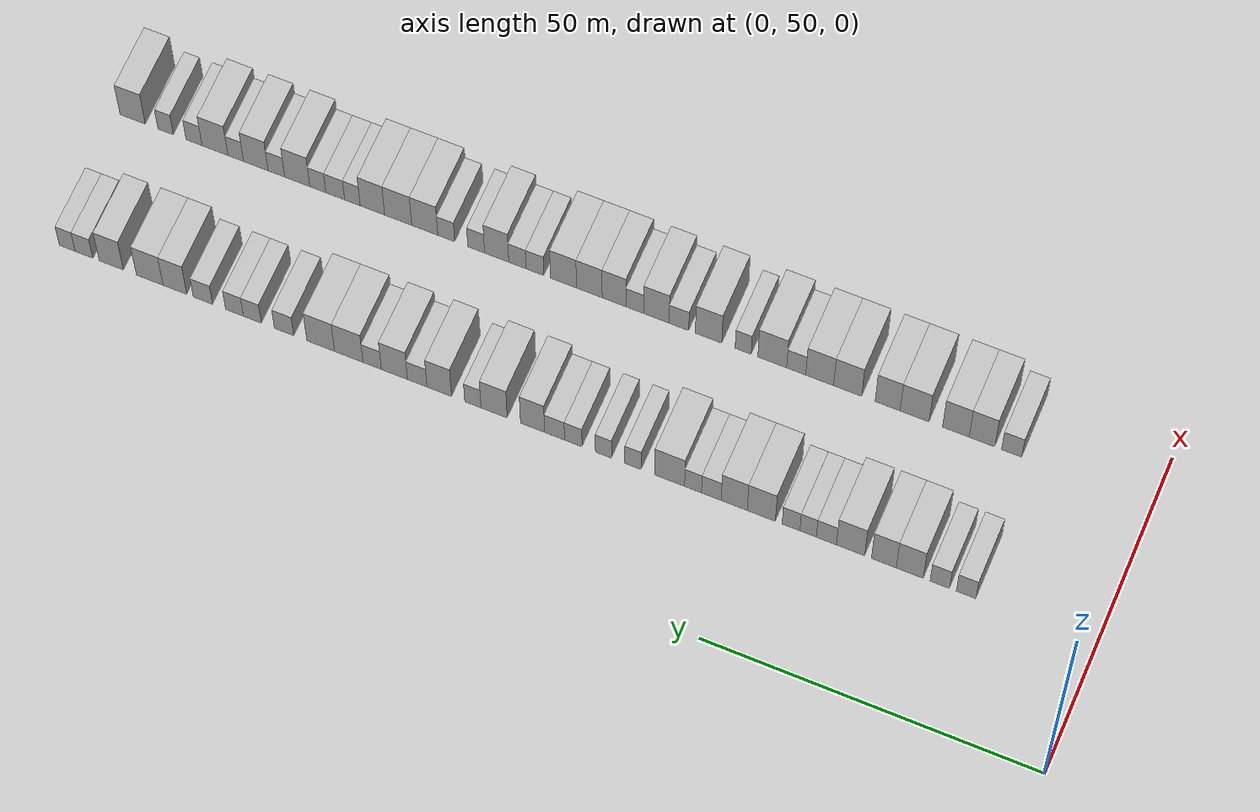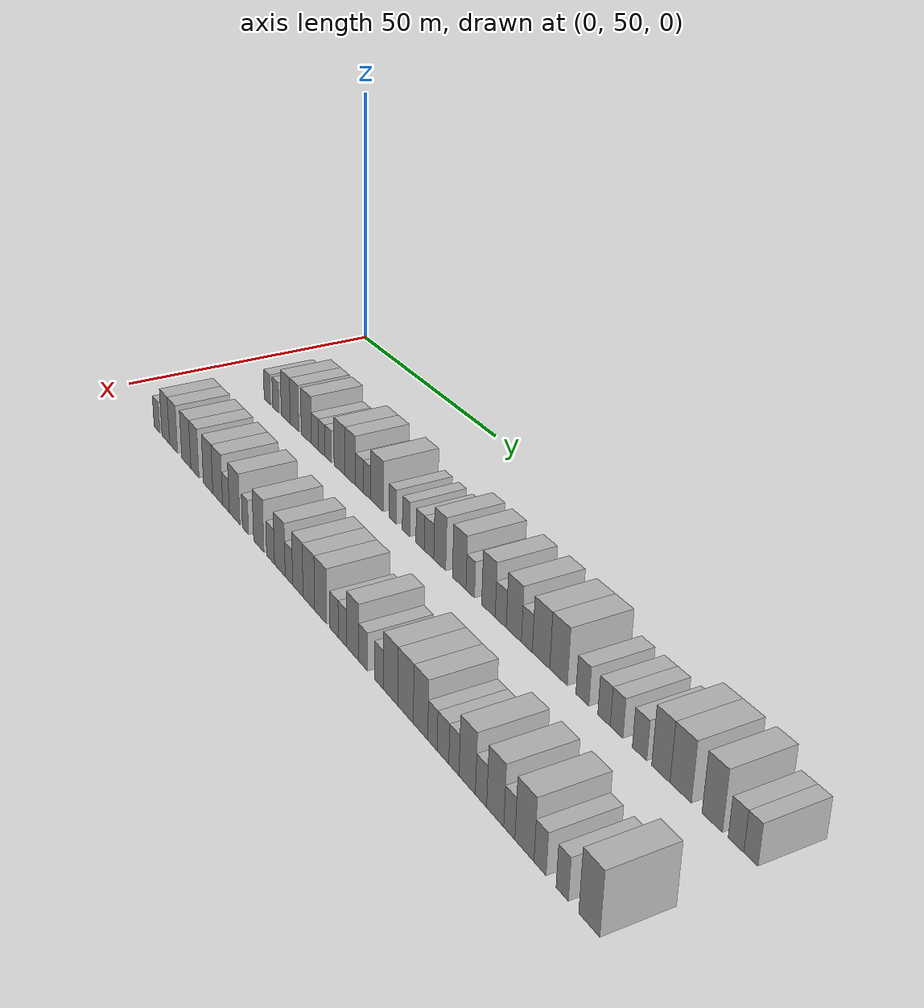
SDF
<sdf version="1.6">
 <world name="default">
  <model name="building_70">
   <static>1</static>
   <pose>25.0000 69.0316 0 0.000000 0.000000 0.000000</pose>
   <link name="link">
    <pose>0 0 3.00 0 0 0</pose>
    <collision name="collision"><geometry><box><size>10.0000 2.8460 6.0000</size></box></geometry></collision>
    <visual name="visual">
     <cast_shadows>0</cast_shadows>
     <geometry><box><size>10.0000 2.8460 6.0000</size></box></geometry>
     <material>
      <script>
       <uri>model://HANNAS_wall/materials/scripts</uri>
       <uri>model://HANNAS_wall/materials/textures</uri>
       <name>vrc/HANNAS_wall</name>
      </script>
     </material>
    </visual>
   </link>
  </model>
  <model name="building_71">
   <static>1</static>
   <pose>25.0000 72.8729 0 0.000000 0.000000 0.000000</pose>
   <link name="link">
    <pose>0 0 3.00 0 0 0</pose>
    <collision name="collision"><geometry><box><size>10.0000 2.8367 6.0000</size></box></geometry></collision>
    <visual name="visual">
     <cast_shadows>0</cast_shadows>
     <geometry><box><size>10.0000 2.8367 6.0000</size></box></geometry>
     <material>
      <script>
       <uri>model://HANNAS_wall/materials/scripts</uri>
       <uri>model://HANNAS_wall/materials/textures</uri>
       <name>vrc/HANNAS_wall</name>
      </script>
     </material>
    </visual>
   </link>
  </model>
  <model name="building_72">
   <static>1</static>
   <pose>25.0000 77.2694 0 0.000000 0.000000 0.000000</pose>
   <link name="link">
    <pose>0 0 4.50 0 0 0</pose>
    <collision name="collision"><geometry><box><size>10.0000 3.9564 9.0000</size></box></geometry></collision>
    <visual name="visual">
     <cast_shadows>0</cast_shadows>
     <geometry><box><size>10.0000 3.9564 9.0000</size></box></geometry>
     <material>
      <script>
       <uri>model://HANNAS_wall/materials/scripts</uri>
       <uri>model://HANNAS_wall/materials/textures</uri>
       <name>vrc/HANNAS_wall</name>
      </script>
     </material>
    </visual>
   </link>
  </model>
  <model name="building_73">
   <static>1</static>
   <pose>25.0000 81.0634 0 0.000000 0.000000 0.000000</pose>
   <link name="link">
    <pose>0 0 4.50 0 0 0</pose>
    <collision name="collision"><geometry><box><size>10.0000 3.6316 9.0000</size></box></geometry></collision>
    <visual name="visual">
     <cast_shadows>0</cast_shadows>
     <geometry><box><size>10.0000 3.6316 9.0000</size></box></geometry>
     <material>
      <script>
       <uri>model://HANNAS_wall/materials/scripts</uri>
       <uri>model://HANNAS_wall/materials/textures</uri>
       <name>vrc/HANNAS_wall</name>
      </script>
     </material>
    </visual>
   </link>
  </model>
  <model name="building_74">
   <static>1</static>
   <pose>25.0000 85.9550 0 0.000000 0.000000 0.000000</pose>
   <link name="link">
    <pose>0 0 4.50 0 0 0</pose>
    <collision name="collision"><geometry><box><size>10.0000 4.1516 9.0000</size></box></geometry></collision>
    <visual name="visual">
     <cast_shadows>0</cast_shadows>
     <geometry><box><size>10.0000 4.1516 9.0000</size></box></geometry>
     <material>
      <script>
       <uri>model://HANNAS_wall/materials/scripts</uri>
       <uri>model://HANNAS_wall/materials/textures</uri>
       <name>vrc/HANNAS_wall</name>
      </script>
     </material>
    </visual>
   </link>
  </model>
  <model name="building_75">
   <static>1</static>
   <pose>25.0000 89.5149 0 0.000000 0.000000 0.000000</pose>
   <link name="link">
    <pose>0 0 3.00 0 0 0</pose>
    <collision name="collision"><geometry><box><size>10.0000 2.9682 6.0000</size></box></geometry></collision>
    <visual name="visual">
     <cast_shadows>0</cast_shadows>
     <geometry><box><size>10.0000 2.9682 6.0000</size></box></geometry>
     <material>
      <script>
       <uri>model://HANNAS_wall/materials/scripts</uri>
       <uri>model://HANNAS_wall/materials/textures</uri>
       <name>vrc/HANNAS_wall</name>
      </script>
     </material>
    </visual>
   </link>
  </model>
  <model name="building_76">
   <static>1</static>
   <pose>25.0000 92.2148 0 0.000000 0.000000 0.000000</pose>
   <link name="link">
    <pose>0 0 3.00 0 0 0</pose>
    <collision name="collision"><geometry><box><size>10.0000 2.4316 6.0000</size></box></geometry></collision>
    <visual name="visual">
     <cast_shadows>0</cast_shadows>
     <geometry><box><size>10.0000 2.4316 6.0000</size></box></geometry>
     <material>
      <script>
       <uri>model://HANNAS_wall/materials/scripts</uri>
       <uri>model://HANNAS_wall/materials/textures</uri>
       <name>vrc/HANNAS_wall</name>
      </script>
     </material>
    </visual>
   </link>
  </model>
  <model name="building_77">
   <static>1</static>
   <pose>25.0000 94.7397 0 0.000000 0.000000 0.000000</pose>
   <link name="link">
    <pose>0 0 3.00 0 0 0</pose>
    <collision name="collision"><geometry><box><size>10.0000 2.6181 6.0000</size></box></geometry></collision>
    <visual name="visual">
     <cast_shadows>0</cast_shadows>
     <geometry><box><size>10.0000 2.6181 6.0000</size></box></geometry>
     <material>
      <script>
       <uri>model://HANNAS_wall/materials/scripts</uri>
       <uri>model://HANNAS_wall/materials/textures</uri>
       <name>vrc/HANNAS_wall</name>
      </script>
     </material>
    </visual>
   </link>
  </model>
  <model name="building_78">
   <static>1</static>
   <pose>25.0000 99.1302 0 0.000000 0.000000 0.000000</pose>
   <link name="link">
    <pose>0 0 4.50 0 0 0</pose>
    <collision name="collision"><geometry><box><size>10.0000 4.1629 9.0000</size></box></geometry></collision>
    <visual name="visual">
     <cast_shadows>0</cast_shadows>
     <geometry><box><size>10.0000 4.1629 9.0000</size></box></geometry>
     <material>
      <script>
       <uri>model://HANNAS_wall/materials/scripts</uri>
       <uri>model://HANNAS_wall/materials/textures</uri>
       <name>vrc/HANNAS_wall</name>
      </script>
     </material>
    </visual>
   </link>
  </model>
  <model name="building_79">
   <static>1</static>
   <pose>25.0000 103.1425 0 0.000000 0.000000 0.000000</pose>
   <link name="link">
    <pose>0 0 4.50 0 0 0</pose>
    <collision name="collision"><geometry><box><size>10.0000 3.8617 9.0000</size></box></geometry></collision>
    <visual name="visual">
     <cast_shadows>0</cast_shadows>
     <geometry><box><size>10.0000 3.8617 9.0000</size></box></geometry>
     <material>
      <script>
       <uri>model://HANNAS_wall/materials/scripts</uri>
       <uri>model://HANNAS_wall/materials/textures</uri>
       <name>vrc/HANNAS_wall</name>
      </script>
     </material>
    </visual>
   </link>
  </model>
  <model name="building_80">
   <static>1</static>
   <pose>25.0000 106.5391 0 0.000000 0.000000 0.000000</pose>
   <link name="link">
    <pose>0 0 3.00 0 0 0</pose>
    <collision name="collision"><geometry><box><size>10.0000 2.9316 6.0000</size></box></geometry></collision>
    <visual name="visual">
     <cast_shadows>0</cast_shadows>
     <geometry><box><size>10.0000 2.9316 6.0000</size></box></geometry>
     <material>
      <script>
       <uri>model://HANNAS_wall/materials/scripts</uri>
       <uri>model://HANNAS_wall/materials/textures</uri>
       <name>vrc/HANNAS_wall</name>
      </script>
     </material>
    </visual>
   </link>
  </model>
  <model name="building_81">
   <static>1</static>
   <pose>25.0000 109.2578 0 0.000000 0.000000 0.000000</pose>
   <link name="link">
    <pose>0 0 3.00 0 0 0</pose>
    <collision name="collision"><geometry><box><size>10.0000 2.5059 6.0000</size></box></geometry></collision>
    <visual name="visual">
     <cast_shadows>0</cast_shadows>
     <geometry><box><size>10.0000 2.5059 6.0000</size></box></geometry>
     <material>
      <script>
       <uri>model://HANNAS_wall/materials/scripts</uri>
       <uri>model://HANNAS_wall/materials/textures</uri>
       <name>vrc/HANNAS_wall</name>
      </script>
     </material>
    </visual>
   </link>
  </model>
  <model name="building_82">
   <static>1</static>
   <pose>25.0000 112.7416 0 0.000000 0.000000 0.000000</pose>
   <link name="link">
    <pose>0 0 4.50 0 0 0</pose>
    <collision name="collision"><geometry><box><size>10.0000 4.4617 9.0000</size></box></geometry></collision>
    <visual name="visual">
     <cast_shadows>0</cast_shadows>
     <geometry><box><size>10.0000 4.4617 9.0000</size></box></geometry>
     <material>
      <script>
       <uri>model://HANNAS_wall/materials/scripts</uri>
       <uri>model://HANNAS_wall/materials/textures</uri>
       <name>vrc/HANNAS_wall</name>
      </script>
     </material>
    </visual>
   </link>
  </model>
  <model name="building_83">
   <static>1</static>
   <pose>25.0000 118.1971 0 0.000000 0.000000 0.000000</pose>
   <link name="link">
    <pose>0 0 3.00 0 0 0</pose>
    <collision name="collision"><geometry><box><size>10.0000 2.4492 6.0000</size></box></geometry></collision>
    <visual name="visual">
     <cast_shadows>0</cast_shadows>
     <geometry><box><size>10.0000 2.4492 6.0000</size></box></geometry>
     <material>
      <script>
       <uri>model://HANNAS_wall/materials/scripts</uri>
       <uri>model://HANNAS_wall/materials/textures</uri>
       <name>vrc/HANNAS_wall</name>
      </script>
     </material>
    </visual>
   </link>
  </model>
  <model name="building_84">
   <static>1</static>
   <pose>25.0000 122.6277 0 0.000000 0.000000 0.000000</pose>
   <link name="link">
    <pose>0 0 3.00 0 0 0</pose>
    <collision name="collision"><geometry><box><size>10.0000 2.4119 6.0000</size></box></geometry></collision>
    <visual name="visual">
     <cast_shadows>0</cast_shadows>
     <geometry><box><size>10.0000 2.4119 6.0000</size></box></geometry>
     <material>
      <script>
       <uri>model://HANNAS_wall/materials/scripts</uri>
       <uri>model://HANNAS_wall/materials/textures</uri>
       <name>vrc/HANNAS_wall</name>
      </script>
     </material>
    </visual>
   </link>
  </model>
  <model name="building_85">
   <static>1</static>
   <pose>25.0000 127.1482 0 0.000000 0.000000 0.000000</pose>
   <link name="link">
    <pose>0 0 3.00 0 0 0</pose>
    <collision name="collision"><geometry><box><size>10.0000 2.6293 6.0000</size></box></geometry></collision>
    <visual name="visual">
     <cast_shadows>0</cast_shadows>
     <geometry><box><size>10.0000 2.6293 6.0000</size></box></geometry>
     <material>
      <script>
       <uri>model://HANNAS_wall/materials/scripts</uri>
       <uri>model://HANNAS_wall/materials/textures</uri>
       <name>vrc/HANNAS_wall</name>
      </script>
     </material>
    </visual>
   </link>
  </model>
  <model name="building_86">
   <static>1</static>
   <pose>25.0000 129.9582 0 0.000000 0.000000 0.000000</pose>
   <link name="link">
    <pose>0 0 3.00 0 0 0</pose>
    <collision name="collision"><geometry><box><size>10.0000 2.9906 6.0000</size></box></geometry></collision>
    <visual name="visual">
     <cast_shadows>0</cast_shadows>
     <geometry><box><size>10.0000 2.9906 6.0000</size></box></geometry>
     <material>
      <script>
       <uri>model://HANNAS_wall/materials/scripts</uri>
       <uri>model://HANNAS_wall/materials/textures</uri>
       <name>vrc/HANNAS_wall</name>
      </script>
     </material>
    </visual>
   </link>
  </model>
  <model name="building_87">
   <static>1</static>
   <pose>25.0000 133.2649 0 0.000000 0.000000 0.000000</pose>
   <link name="link">
    <pose>0 0 4.50 0 0 0</pose>
    <collision name="collision"><geometry><box><size>10.0000 3.6228 9.0000</size></box></geometry></collision>
    <visual name="visual">
     <cast_shadows>0</cast_shadows>
     <geometry><box><size>10.0000 3.6228 9.0000</size></box></geometry>
     <material>
      <script>
       <uri>model://HANNAS_wall/materials/scripts</uri>
       <uri>model://HANNAS_wall/materials/textures</uri>
       <name>vrc/HANNAS_wall</name>
      </script>
     </material>
    </visual>
   </link>
  </model>
  <model name="building_88">
   <static>1</static>
   <pose>25.0000 139.0532 0 0.000000 0.000000 0.000000</pose>
   <link name="link">
    <pose>0 0 4.50 0 0 0</pose>
    <collision name="collision"><geometry><box><size>10.0000 3.9539 9.0000</size></box></geometry></collision>
    <visual name="visual">
     <cast_shadows>0</cast_shadows>
     <geometry><box><size>10.0000 3.9539 9.0000</size></box></geometry>
     <material>
      <script>
       <uri>model://HANNAS_wall/materials/scripts</uri>
       <uri>model://HANNAS_wall/materials/textures</uri>
       <name>vrc/HANNAS_wall</name>
      </script>
     </material>
    </visual>
   </link>
  </model>
  <model name="building_89">
   <static>1</static>
   <pose>25.0000 142.2580 0 0.000000 0.000000 0.000000</pose>
   <link name="link">
    <pose>0 0 3.00 0 0 0</pose>
    <collision name="collision"><geometry><box><size>10.0000 2.4556 6.0000</size></box></geometry></collision>
    <visual name="visual">
     <cast_shadows>0</cast_shadows>
     <geometry><box><size>10.0000 2.4556 6.0000</size></box></geometry>
     <material>
      <script>
       <uri>model://HANNAS_wall/materials/scripts</uri>
       <uri>model://HANNAS_wall/materials/textures</uri>
       <name>vrc/HANNAS_wall</name>
      </script>
     </material>
    </visual>
   </link>
  </model>
  <model name="building_90">
   <static>1</static>
   <pose>25.0000 147.3455 0 0.000000 0.000000 0.000000</pose>
   <link name="link">
    <pose>0 0 4.50 0 0 0</pose>
    <collision name="collision"><geometry><box><size>10.0000 3.7194 9.0000</size></box></geometry></collision>
    <visual name="visual">
     <cast_shadows>0</cast_shadows>
     <geometry><box><size>10.0000 3.7194 9.0000</size></box></geometry>
     <material>
      <script>
       <uri>model://HANNAS_wall/materials/scripts</uri>
       <uri>model://HANNAS_wall/materials/textures</uri>
       <name>vrc/HANNAS_wall</name>
      </script>
     </material>
    </visual>
   </link>
  </model>
  <model name="building_91">
   <static>1</static>
   <pose>25.0000 150.6848 0 0.000000 0.000000 0.000000</pose>
   <link name="link">
    <pose>0 0 3.00 0 0 0</pose>
    <collision name="collision"><geometry><box><size>10.0000 2.9591 6.0000</size></box></geometry></collision>
    <visual name="visual">
     <cast_shadows>0</cast_shadows>
     <geometry><box><size>10.0000 2.9591 6.0000</size></box></geometry>
     <material>
      <script>
       <uri>model://HANNAS_wall/materials/scripts</uri>
       <uri>model://HANNAS_wall/materials/textures</uri>
       <name>vrc/HANNAS_wall</name>
      </script>
     </material>
    </visual>
   </link>
  </model>
  <model name="building_92">
   <static>1</static>
   <pose>25.0000 154.1503 0 0.000000 0.000000 0.000000</pose>
   <link name="link">
    <pose>0 0 4.50 0 0 0</pose>
    <collision name="collision"><geometry><box><size>10.0000 3.9718 9.0000</size></box></geometry></collision>
    <visual name="visual">
     <cast_shadows>0</cast_shadows>
     <geometry><box><size>10.0000 3.9718 9.0000</size></box></geometry>
     <material>
      <script>
       <uri>model://HANNAS_wall/materials/scripts</uri>
       <uri>model://HANNAS_wall/materials/textures</uri>
       <name>vrc/HANNAS_wall</name>
      </script>
     </material>
    </visual>
   </link>
  </model>
  <model name="building_93">
   <static>1</static>
   <pose>25.0000 157.5284 0 0.000000 0.000000 0.000000</pose>
   <link name="link">
    <pose>0 0 3.00 0 0 0</pose>
    <collision name="collision"><geometry><box><size>10.0000 2.7844 6.0000</size></box></geometry></collision>
    <visual name="visual">
     <cast_shadows>0</cast_shadows>
     <geometry><box><size>10.0000 2.7844 6.0000</size></box></geometry>
     <material>
      <script>
       <uri>model://HANNAS_wall/materials/scripts</uri>
       <uri>model://HANNAS_wall/materials/textures</uri>
       <name>vrc/HANNAS_wall</name>
      </script>
     </material>
    </visual>
   </link>
  </model>
  <model name="building_94">
   <static>1</static>
   <pose>25.0000 161.0848 0 0.000000 0.000000 0.000000</pose>
   <link name="link">
    <pose>0 0 4.50 0 0 0</pose>
    <collision name="collision"><geometry><box><size>10.0000 4.3284 9.0000</size></box></geometry></collision>
    <visual name="visual">
     <cast_shadows>0</cast_shadows>
     <geometry><box><size>10.0000 4.3284 9.0000</size></box></geometry>
     <material>
      <script>
       <uri>model://HANNAS_wall/materials/scripts</uri>
       <uri>model://HANNAS_wall/materials/textures</uri>
       <name>vrc/HANNAS_wall</name>
      </script>
     </material>
    </visual>
   </link>
  </model>
  <model name="building_95">
   <static>1</static>
   <pose>25.0000 165.3684 0 0.000000 0.000000 0.000000</pose>
   <link name="link">
    <pose>0 0 4.50 0 0 0</pose>
    <collision name="collision"><geometry><box><size>10.0000 4.2388 9.0000</size></box></geometry></collision>
    <visual name="visual">
     <cast_shadows>0</cast_shadows>
     <geometry><box><size>10.0000 4.2388 9.0000</size></box></geometry>
     <material>
      <script>
       <uri>model://HANNAS_wall/materials/scripts</uri>
       <uri>model://HANNAS_wall/materials/textures</uri>
       <name>vrc/HANNAS_wall</name>
      </script>
     </material>
    </visual>
   </link>
  </model>
  <model name="building_96">
   <static>1</static>
   <pose>25.0000 170.9753 0 0.000000 0.000000 0.000000</pose>
   <link name="link">
    <pose>0 0 3.00 0 0 0</pose>
    <collision name="collision"><geometry><box><size>10.0000 2.9751 6.0000</size></box></geometry></collision>
    <visual name="visual">
     <cast_shadows>0</cast_shadows>
     <geometry><box><size>10.0000 2.9751 6.0000</size></box></geometry>
     <material>
      <script>
       <uri>model://HANNAS_wall/materials/scripts</uri>
       <uri>model://HANNAS_wall/materials/textures</uri>
       <name>vrc/HANNAS_wall</name>
      </script>
     </material>
    </visual>
   </link>
  </model>
  <model name="building_97">
   <static>1</static>
   <pose>25.0000 175.8394 0 0.000000 0.000000 0.000000</pose>
   <link name="link">
    <pose>0 0 3.00 0 0 0</pose>
    <collision name="collision"><geometry><box><size>10.0000 2.7530 6.0000</size></box></geometry></collision>
    <visual name="visual">
     <cast_shadows>0</cast_shadows>
     <geometry><box><size>10.0000 2.7530 6.0000</size></box></geometry>
     <material>
      <script>
       <uri>model://HANNAS_wall/materials/scripts</uri>
       <uri>model://HANNAS_wall/materials/textures</uri>
       <name>vrc/HANNAS_wall</name>
      </script>
     </material>
    </visual>
   </link>
  </model>
  <model name="building_98">
   <static>1</static>
   <pose>25.0000 178.5827 0 0.000000 0.000000 0.000000</pose>
   <link name="link">
    <pose>0 0 3.00 0 0 0</pose>
    <collision name="collision"><geometry><box><size>10.0000 2.7336 6.0000</size></box></geometry></collision>
    <visual name="visual">
     <cast_shadows>0</cast_shadows>
     <geometry><box><size>10.0000 2.7336 6.0000</size></box></geometry>
     <material>
      <script>
       <uri>model://HANNAS_wall/materials/scripts</uri>
       <uri>model://HANNAS_wall/materials/textures</uri>
       <name>vrc/HANNAS_wall</name>
      </script>
     </material>
    </visual>
   </link>
  </model>
  <model name="building_99">
   <static>1</static>
   <pose>25.0000 183.4373 0 0.000000 0.000000 0.000000</pose>
   <link name="link">
    <pose>0 0 3.00 0 0 0</pose>
    <collision name="collision"><geometry><box><size>10.0000 2.9756 6.0000</size></box></geometry></collision>
    <visual name="visual">
     <cast_shadows>0</cast_shadows>
     <geometry><box><size>10.0000 2.9756 6.0000</size></box></geometry>
     <material>
      <script>
       <uri>model://HANNAS_wall/materials/scripts</uri>
       <uri>model://HANNAS_wall/materials/textures</uri>
       <name>vrc/HANNAS_wall</name>
      </script>
     </material>
    </visual>
   </link>
  </model>
  <model name="building_100">
   <static>1</static>
   <pose>25.0000 187.7541 0 0.000000 0.000000 0.000000</pose>
   <link name="link">
    <pose>0 0 4.50 0 0 0</pose>
    <collision name="collision"><geometry><box><size>10.0000 3.6580 9.0000</size></box></geometry></collision>
    <visual name="visual">
     <cast_shadows>0</cast_shadows>
     <geometry><box><size>10.0000 3.6580 9.0000</size></box></geometry>
     <material>
      <script>
       <uri>model://HANNAS_wall/materials/scripts</uri>
       <uri>model://HANNAS_wall/materials/textures</uri>
       <name>vrc/HANNAS_wall</name>
      </script>
     </material>
    </visual>
   </link>
  </model>
  <model name="building_101">
   <static>1</static>
   <pose>25.0000 191.6501 0 0.000000 0.000000 0.000000</pose>
   <link name="link">
    <pose>0 0 4.50 0 0 0</pose>
    <collision name="collision"><geometry><box><size>10.0000 4.1341 9.0000</size></box></geometry></collision>
    <visual name="visual">
     <cast_shadows>0</cast_shadows>
     <geometry><box><size>10.0000 4.1341 9.0000</size></box></geometry>
     <material>
      <script>
       <uri>model://HANNAS_wall/materials/scripts</uri>
       <uri>model://HANNAS_wall/materials/textures</uri>
       <name>vrc/HANNAS_wall</name>
      </script>
     </material>
    </visual>
   </link>
  </model>
  <model name="building_102">
   <static>1</static>
   <pose>25.0000 197.5918 0 0.000000 0.000000 0.000000</pose>
   <link name="link">
    <pose>0 0 4.50 0 0 0</pose>
    <collision name="collision"><geometry><box><size>10.0000 3.7493 9.0000</size></box></geometry></collision>
    <visual name="visual">
     <cast_shadows>0</cast_shadows>
     <geometry><box><size>10.0000 3.7493 9.0000</size></box></geometry>
     <material>
      <script>
       <uri>model://HANNAS_wall/materials/scripts</uri>
       <uri>model://HANNAS_wall/materials/textures</uri>
       <name>vrc/HANNAS_wall</name>
      </script>
     </material>
    </visual>
   </link>
  </model>
  <model name="building_103">
   <static>1</static>
   <pose>25.0000 201.8452 0 0.000000 0.000000 0.000000</pose>
   <link name="link">
    <pose>0 0 3.00 0 0 0</pose>
    <collision name="collision"><geometry><box><size>10.0000 2.7576 6.0000</size></box></geometry></collision>
    <visual name="visual">
     <cast_shadows>0</cast_shadows>
     <geometry><box><size>10.0000 2.7576 6.0000</size></box></geometry>
     <material>
      <script>
       <uri>model://HANNAS_wall/materials/scripts</uri>
       <uri>model://HANNAS_wall/materials/textures</uri>
       <name>vrc/HANNAS_wall</name>
      </script>
     </material>
    </visual>
   </link>
  </model>
  <model name="building_104">
   <static>1</static>
   <pose>25.0000 204.4555 0 0.000000 0.000000 0.000000</pose>
   <link name="link">
    <pose>0 0 3.00 0 0 0</pose>
    <collision name="collision"><geometry><box><size>10.0000 2.4629 6.0000</size></box></geometry></collision>
    <visual name="visual">
     <cast_shadows>0</cast_shadows>
     <geometry><box><size>10.0000 2.4629 6.0000</size></box></geometry>
     <material>
      <script>
       <uri>model://HANNAS_wall/materials/scripts</uri>
       <uri>model://HANNAS_wall/materials/textures</uri>
       <name>vrc/HANNAS_wall</name>
      </script>
     </material>
    </visual>
   </link>
  </model>
  <model name="building_176">
   <static>1</static>
   <pose>47.0000 70.7678 0 0.000000 0.000000 0.000000</pose>
   <link name="link">
    <pose>0 0 3.00 0 0 0</pose>
    <collision name="collision"><geometry><box><size>10.0000 2.9936 6.0000</size></box></geometry></collision>
    <visual name="visual">
     <cast_shadows>0</cast_shadows>
     <geometry><box><size>10.0000 2.9936 6.0000</size></box></geometry>
     <material>
      <script>
       <uri>model://HANNAS_wall/materials/scripts</uri>
       <uri>model://HANNAS_wall/materials/textures</uri>
       <name>vrc/HANNAS_wall</name>
      </script>
     </material>
    </visual>
   </link>
  </model>
  <model name="building_177">
   <static>1</static>
   <pose>47.0000 75.1607 0 0.000000 0.000000 0.000000</pose>
   <link name="link">
    <pose>0 0 4.50 0 0 0</pose>
    <collision name="collision"><geometry><box><size>10.0000 3.7922 9.0000</size></box></geometry></collision>
    <visual name="visual">
     <cast_shadows>0</cast_shadows>
     <geometry><box><size>10.0000 3.7922 9.0000</size></box></geometry>
     <material>
      <script>
       <uri>model://HANNAS_wall/materials/scripts</uri>
       <uri>model://HANNAS_wall/materials/textures</uri>
       <name>vrc/HANNAS_wall</name>
      </script>
     </material>
    </visual>
   </link>
  </model>
  <model name="building_178">
   <static>1</static>
   <pose>47.0000 79.0260 0 0.000000 0.000000 0.000000</pose>
   <link name="link">
    <pose>0 0 4.50 0 0 0</pose>
    <collision name="collision"><geometry><box><size>10.0000 3.9385 9.0000</size></box></geometry></collision>
    <visual name="visual">
     <cast_shadows>0</cast_shadows>
     <geometry><box><size>10.0000 3.9385 9.0000</size></box></geometry>
     <material>
      <script>
       <uri>model://HANNAS_wall/materials/scripts</uri>
       <uri>model://HANNAS_wall/materials/textures</uri>
       <name>vrc/HANNAS_wall</name>
      </script>
     </material>
    </visual>
   </link>
  </model>
  <model name="building_179">
   <static>1</static>
   <pose>47.0000 85.1475 0 0.000000 0.000000 0.000000</pose>
   <link name="link">
    <pose>0 0 4.50 0 0 0</pose>
    <collision name="collision"><geometry><box><size>10.0000 4.3046 9.0000</size></box></geometry></collision>
    <visual name="visual">
     <cast_shadows>0</cast_shadows>
     <geometry><box><size>10.0000 4.3046 9.0000</size></box></geometry>
     <material>
      <script>
       <uri>model://HANNAS_wall/materials/scripts</uri>
       <uri>model://HANNAS_wall/materials/textures</uri>
       <name>vrc/HANNAS_wall</name>
      </script>
     </material>
    </visual>
   </link>
  </model>
  <model name="building_180">
   <static>1</static>
   <pose>47.0000 89.1538 0 0.000000 0.000000 0.000000</pose>
   <link name="link">
    <pose>0 0 4.50 0 0 0</pose>
    <collision name="collision"><geometry><box><size>10.0000 3.7081 9.0000</size></box></geometry></collision>
    <visual name="visual">
     <cast_shadows>0</cast_shadows>
     <geometry><box><size>10.0000 3.7081 9.0000</size></box></geometry>
     <material>
      <script>
       <uri>model://HANNAS_wall/materials/scripts</uri>
       <uri>model://HANNAS_wall/materials/textures</uri>
       <name>vrc/HANNAS_wall</name>
      </script>
     </material>
    </visual>
   </link>
  </model>
  <model name="building_181">
   <static>1</static>
   <pose>47.0000 95.1034 0 0.000000 0.000000 0.000000</pose>
   <link name="link">
    <pose>0 0 4.50 0 0 0</pose>
    <collision name="collision"><geometry><box><size>10.0000 4.1911 9.0000</size></box></geometry></collision>
    <visual name="visual">
     <cast_shadows>0</cast_shadows>
     <geometry><box><size>10.0000 4.1911 9.0000</size></box></geometry>
     <material>
      <script>
       <uri>model://HANNAS_wall/materials/scripts</uri>
       <uri>model://HANNAS_wall/materials/textures</uri>
       <name>vrc/HANNAS_wall</name>
      </script>
     </material>
    </visual>
   </link>
  </model>
  <model name="building_182">
   <static>1</static>
   <pose>47.0000 99.2856 0 0.000000 0.000000 0.000000</pose>
   <link name="link">
    <pose>0 0 4.50 0 0 0</pose>
    <collision name="collision"><geometry><box><size>10.0000 4.1733 9.0000</size></box></geometry></collision>
    <visual name="visual">
     <cast_shadows>0</cast_shadows>
     <geometry><box><size>10.0000 4.1733 9.0000</size></box></geometry>
     <material>
      <script>
       <uri>model://HANNAS_wall/materials/scripts</uri>
       <uri>model://HANNAS_wall/materials/textures</uri>
       <name>vrc/HANNAS_wall</name>
      </script>
     </material>
    </visual>
   </link>
  </model>
  <model name="building_183">
   <static>1</static>
   <pose>47.0000 102.8049 0 0.000000 0.000000 0.000000</pose>
   <link name="link">
    <pose>0 0 3.00 0 0 0</pose>
    <collision name="collision"><geometry><box><size>10.0000 2.8653 6.0000</size></box></geometry></collision>
    <visual name="visual">
     <cast_shadows>0</cast_shadows>
     <geometry><box><size>10.0000 2.8653 6.0000</size></box></geometry>
     <material>
      <script>
       <uri>model://HANNAS_wall/materials/scripts</uri>
       <uri>model://HANNAS_wall/materials/textures</uri>
       <name>vrc/HANNAS_wall</name>
      </script>
     </material>
    </visual>
   </link>
  </model>
  <model name="building_184">
   <static>1</static>
   <pose>47.0000 106.3970 0 0.000000 0.000000 0.000000</pose>
   <link name="link">
    <pose>0 0 4.50 0 0 0</pose>
    <collision name="collision"><geometry><box><size>10.0000 4.3189 9.0000</size></box></geometry></collision>
    <visual name="visual">
     <cast_shadows>0</cast_shadows>
     <geometry><box><size>10.0000 4.3189 9.0000</size></box></geometry>
     <material>
      <script>
       <uri>model://HANNAS_wall/materials/scripts</uri>
       <uri>model://HANNAS_wall/materials/textures</uri>
       <name>vrc/HANNAS_wall</name>
      </script>
     </material>
    </visual>
   </link>
  </model>
  <model name="building_185">
   <static>1</static>
   <pose>47.0000 110.7695 0 0.000000 0.000000 0.000000</pose>
   <link name="link">
    <pose>0 0 3.00 0 0 0</pose>
    <collision name="collision"><geometry><box><size>10.0000 2.4260 6.0000</size></box></geometry></collision>
    <visual name="visual">
     <cast_shadows>0</cast_shadows>
     <geometry><box><size>10.0000 2.4260 6.0000</size></box></geometry>
     <material>
      <script>
       <uri>model://HANNAS_wall/materials/scripts</uri>
       <uri>model://HANNAS_wall/materials/textures</uri>
       <name>vrc/HANNAS_wall</name>
      </script>
     </material>
    </visual>
   </link>
  </model>
  <model name="building_186">
   <static>1</static>
   <pose>47.0000 115.9763 0 0.000000 0.000000 0.000000</pose>
   <link name="link">
    <pose>0 0 4.50 0 0 0</pose>
    <collision name="collision"><geometry><box><size>10.0000 3.9876 9.0000</size></box></geometry></collision>
    <visual name="visual">
     <cast_shadows>0</cast_shadows>
     <geometry><box><size>10.0000 3.9876 9.0000</size></box></geometry>
     <material>
      <script>
       <uri>model://HANNAS_wall/materials/scripts</uri>
       <uri>model://HANNAS_wall/materials/textures</uri>
       <name>vrc/HANNAS_wall</name>
      </script>
     </material>
    </visual>
   </link>
  </model>
  <model name="building_187">
   <static>1</static>
   <pose>47.0000 120.4471 0 0.000000 0.000000 0.000000</pose>
   <link name="link">
    <pose>0 0 3.00 0 0 0</pose>
    <collision name="collision"><geometry><box><size>10.0000 2.9541 6.0000</size></box></geometry></collision>
    <visual name="visual">
     <cast_shadows>0</cast_shadows>
     <geometry><box><size>10.0000 2.9541 6.0000</size></box></geometry>
     <material>
      <script>
       <uri>model://HANNAS_wall/materials/scripts</uri>
       <uri>model://HANNAS_wall/materials/textures</uri>
       <name>vrc/HANNAS_wall</name>
      </script>
     </material>
    </visual>
   </link>
  </model>
  <model name="building_188">
   <static>1</static>
   <pose>47.0000 123.8671 0 0.000000 0.000000 0.000000</pose>
   <link name="link">
    <pose>0 0 4.50 0 0 0</pose>
    <collision name="collision"><geometry><box><size>10.0000 3.8858 9.0000</size></box></geometry></collision>
    <visual name="visual">
     <cast_shadows>0</cast_shadows>
     <geometry><box><size>10.0000 3.8858 9.0000</size></box></geometry>
     <material>
      <script>
       <uri>model://HANNAS_wall/materials/scripts</uri>
       <uri>model://HANNAS_wall/materials/textures</uri>
       <name>vrc/HANNAS_wall</name>
      </script>
     </material>
    </visual>
   </link>
  </model>
  <model name="building_189">
   <static>1</static>
   <pose>47.0000 127.1366 0 0.000000 0.000000 0.000000</pose>
   <link name="link">
    <pose>0 0 3.00 0 0 0</pose>
    <collision name="collision"><geometry><box><size>10.0000 2.6533 6.0000</size></box></geometry></collision>
    <visual name="visual">
     <cast_shadows>0</cast_shadows>
     <geometry><box><size>10.0000 2.6533 6.0000</size></box></geometry>
     <material>
      <script>
       <uri>model://HANNAS_wall/materials/scripts</uri>
       <uri>model://HANNAS_wall/materials/textures</uri>
       <name>vrc/HANNAS_wall</name>
      </script>
     </material>
    </visual>
   </link>
  </model>
  <model name="building_190">
   <static>1</static>
   <pose>47.0000 130.2721 0 0.000000 0.000000 0.000000</pose>
   <link name="link">
    <pose>0 0 4.50 0 0 0</pose>
    <collision name="collision"><geometry><box><size>10.0000 3.6176 9.0000</size></box></geometry></collision>
    <visual name="visual">
     <cast_shadows>0</cast_shadows>
     <geometry><box><size>10.0000 3.6176 9.0000</size></box></geometry>
     <material>
      <script>
       <uri>model://HANNAS_wall/materials/scripts</uri>
       <uri>model://HANNAS_wall/materials/textures</uri>
       <name>vrc/HANNAS_wall</name>
      </script>
     </material>
    </visual>
   </link>
  </model>
  <model name="building_191">
   <static>1</static>
   <pose>47.0000 134.0388 0 0.000000 0.000000 0.000000</pose>
   <link name="link">
    <pose>0 0 4.50 0 0 0</pose>
    <collision name="collision"><geometry><box><size>10.0000 3.9158 9.0000</size></box></geometry></collision>
    <visual name="visual">
     <cast_shadows>0</cast_shadows>
     <geometry><box><size>10.0000 3.9158 9.0000</size></box></geometry>
     <material>
      <script>
       <uri>model://HANNAS_wall/materials/scripts</uri>
       <uri>model://HANNAS_wall/materials/textures</uri>
       <name>vrc/HANNAS_wall</name>
      </script>
     </material>
    </visual>
   </link>
  </model>
  <model name="building_192">
   <static>1</static>
   <pose>47.0000 137.9750 0 0.000000 0.000000 0.000000</pose>
   <link name="link">
    <pose>0 0 4.50 0 0 0</pose>
    <collision name="collision"><geometry><box><size>10.0000 3.9566 9.0000</size></box></geometry></collision>
    <visual name="visual">
     <cast_shadows>0</cast_shadows>
     <geometry><box><size>10.0000 3.9566 9.0000</size></box></geometry>
     <material>
      <script>
       <uri>model://HANNAS_wall/materials/scripts</uri>
       <uri>model://HANNAS_wall/materials/textures</uri>
       <name>vrc/HANNAS_wall</name>
      </script>
     </material>
    </visual>
   </link>
  </model>
  <model name="building_193">
   <static>1</static>
   <pose>47.0000 142.3132 0 0.000000 0.000000 0.000000</pose>
   <link name="link">
    <pose>0 0 3.00 0 0 0</pose>
    <collision name="collision"><geometry><box><size>10.0000 2.7198 6.0000</size></box></geometry></collision>
    <visual name="visual">
     <cast_shadows>0</cast_shadows>
     <geometry><box><size>10.0000 2.7198 6.0000</size></box></geometry>
     <material>
      <script>
       <uri>model://HANNAS_wall/materials/scripts</uri>
       <uri>model://HANNAS_wall/materials/textures</uri>
       <name>vrc/HANNAS_wall</name>
      </script>
     </material>
    </visual>
   </link>
  </model>
  <model name="building_194">
   <static>1</static>
   <pose>47.0000 144.9946 0 0.000000 0.000000 0.000000</pose>
   <link name="link">
    <pose>0 0 3.00 0 0 0</pose>
    <collision name="collision"><geometry><box><size>10.0000 2.6430 6.0000</size></box></geometry></collision>
    <visual name="visual">
     <cast_shadows>0</cast_shadows>
     <geometry><box><size>10.0000 2.6430 6.0000</size></box></geometry>
     <material>
      <script>
       <uri>model://HANNAS_wall/materials/scripts</uri>
       <uri>model://HANNAS_wall/materials/textures</uri>
       <name>vrc/HANNAS_wall</name>
      </script>
     </material>
    </visual>
   </link>
  </model>
  <model name="building_195">
   <static>1</static>
   <pose>47.0000 148.1630 0 0.000000 0.000000 0.000000</pose>
   <link name="link">
    <pose>0 0 4.50 0 0 0</pose>
    <collision name="collision"><geometry><box><size>10.0000 3.6939 9.0000</size></box></geometry></collision>
    <visual name="visual">
     <cast_shadows>0</cast_shadows>
     <geometry><box><size>10.0000 3.6939 9.0000</size></box></geometry>
     <material>
      <script>
       <uri>model://HANNAS_wall/materials/scripts</uri>
       <uri>model://HANNAS_wall/materials/textures</uri>
       <name>vrc/HANNAS_wall</name>
      </script>
     </material>
    </visual>
   </link>
  </model>
  <model name="building_196">
   <static>1</static>
   <pose>47.0000 151.3006 0 0.000000 0.000000 0.000000</pose>
   <link name="link">
    <pose>0 0 3.00 0 0 0</pose>
    <collision name="collision"><geometry><box><size>10.0000 2.5812 6.0000</size></box></geometry></collision>
    <visual name="visual">
     <cast_shadows>0</cast_shadows>
     <geometry><box><size>10.0000 2.5812 6.0000</size></box></geometry>
     <material>
      <script>
       <uri>model://HANNAS_wall/materials/scripts</uri>
       <uri>model://HANNAS_wall/materials/textures</uri>
       <name>vrc/HANNAS_wall</name>
      </script>
     </material>
    </visual>
   </link>
  </model>
  <model name="building_197">
   <static>1</static>
   <pose>47.0000 155.8884 0 0.000000 0.000000 0.000000</pose>
   <link name="link">
    <pose>0 0 3.00 0 0 0</pose>
    <collision name="collision"><geometry><box><size>10.0000 2.5943 6.0000</size></box></geometry></collision>
    <visual name="visual">
     <cast_shadows>0</cast_shadows>
     <geometry><box><size>10.0000 2.5943 6.0000</size></box></geometry>
     <material>
      <script>
       <uri>model://HANNAS_wall/materials/scripts</uri>
       <uri>model://HANNAS_wall/materials/textures</uri>
       <name>vrc/HANNAS_wall</name>
      </script>
     </material>
    </visual>
   </link>
  </model>
  <model name="building_198">
   <static>1</static>
   <pose>47.0000 159.1899 0 0.000000 0.000000 0.000000</pose>
   <link name="link">
    <pose>0 0 4.50 0 0 0</pose>
    <collision name="collision"><geometry><box><size>10.0000 4.0088 9.0000</size></box></geometry></collision>
    <visual name="visual">
     <cast_shadows>0</cast_shadows>
     <geometry><box><size>10.0000 4.0088 9.0000</size></box></geometry>
     <material>
      <script>
       <uri>model://HANNAS_wall/materials/scripts</uri>
       <uri>model://HANNAS_wall/materials/textures</uri>
       <name>vrc/HANNAS_wall</name>
      </script>
     </material>
    </visual>
   </link>
  </model>
  <model name="building_199">
   <static>1</static>
   <pose>47.0000 163.2865 0 0.000000 0.000000 0.000000</pose>
   <link name="link">
    <pose>0 0 4.50 0 0 0</pose>
    <collision name="collision"><geometry><box><size>10.0000 4.1844 9.0000</size></box></geometry></collision>
    <visual name="visual">
     <cast_shadows>0</cast_shadows>
     <geometry><box><size>10.0000 4.1844 9.0000</size></box></geometry>
     <material>
      <script>
       <uri>model://HANNAS_wall/materials/scripts</uri>
       <uri>model://HANNAS_wall/materials/textures</uri>
       <name>vrc/HANNAS_wall</name>
      </script>
     </material>
    </visual>
   </link>
  </model>
  <model name="building_200">
   <static>1</static>
   <pose>47.0000 167.2665 0 0.000000 0.000000 0.000000</pose>
   <link name="link">
    <pose>0 0 4.50 0 0 0</pose>
    <collision name="collision"><geometry><box><size>10.0000 3.7754 9.0000</size></box></geometry></collision>
    <visual name="visual">
     <cast_shadows>0</cast_shadows>
     <geometry><box><size>10.0000 3.7754 9.0000</size></box></geometry>
     <material>
      <script>
       <uri>model://HANNAS_wall/materials/scripts</uri>
       <uri>model://HANNAS_wall/materials/textures</uri>
       <name>vrc/HANNAS_wall</name>
      </script>
     </material>
    </visual>
   </link>
  </model>
  <model name="building_201">
   <static>1</static>
   <pose>47.0000 170.3555 0 0.000000 0.000000 0.000000</pose>
   <link name="link">
    <pose>0 0 3.00 0 0 0</pose>
    <collision name="collision"><geometry><box><size>10.0000 2.4027 6.0000</size></box></geometry></collision>
    <visual name="visual">
     <cast_shadows>0</cast_shadows>
     <geometry><box><size>10.0000 2.4027 6.0000</size></box></geometry>
     <material>
      <script>
       <uri>model://HANNAS_wall/materials/scripts</uri>
       <uri>model://HANNAS_wall/materials/textures</uri>
       <name>vrc/HANNAS_wall</name>
      </script>
     </material>
    </visual>
   </link>
  </model>
  <model name="building_202">
   <static>1</static>
   <pose>47.0000 173.0118 0 0.000000 0.000000 0.000000</pose>
   <link name="link">
    <pose>0 0 3.00 0 0 0</pose>
    <collision name="collision"><geometry><box><size>10.0000 2.9100 6.0000</size></box></geometry></collision>
    <visual name="visual">
     <cast_shadows>0</cast_shadows>
     <geometry><box><size>10.0000 2.9100 6.0000</size></box></geometry>
     <material>
      <script>
       <uri>model://HANNAS_wall/materials/scripts</uri>
       <uri>model://HANNAS_wall/materials/textures</uri>
       <name>vrc/HANNAS_wall</name>
      </script>
     </material>
    </visual>
   </link>
  </model>
  <model name="building_203">
   <static>1</static>
   <pose>47.0000 175.7090 0 0.000000 0.000000 0.000000</pose>
   <link name="link">
    <pose>0 0 3.00 0 0 0</pose>
    <collision name="collision"><geometry><box><size>10.0000 2.4843 6.0000</size></box></geometry></collision>
    <visual name="visual">
     <cast_shadows>0</cast_shadows>
     <geometry><box><size>10.0000 2.4843 6.0000</size></box></geometry>
     <material>
      <script>
       <uri>model://HANNAS_wall/materials/scripts</uri>
       <uri>model://HANNAS_wall/materials/textures</uri>
       <name>vrc/HANNAS_wall</name>
      </script>
     </material>
    </visual>
   </link>
  </model>
  <model name="building_204">
   <static>1</static>
   <pose>47.0000 178.8996 0 0.000000 0.000000 0.000000</pose>
   <link name="link">
    <pose>0 0 4.50 0 0 0</pose>
    <collision name="collision"><geometry><box><size>10.0000 3.8968 9.0000</size></box></geometry></collision>
    <visual name="visual">
     <cast_shadows>0</cast_shadows>
     <geometry><box><size>10.0000 3.8968 9.0000</size></box></geometry>
     <material>
      <script>
       <uri>model://HANNAS_wall/materials/scripts</uri>
       <uri>model://HANNAS_wall/materials/textures</uri>
       <name>vrc/HANNAS_wall</name>
      </script>
     </material>
    </visual>
   </link>
  </model>
  <model name="building_205">
   <static>1</static>
   <pose>47.0000 182.1428 0 0.000000 0.000000 0.000000</pose>
   <link name="link">
    <pose>0 0 3.00 0 0 0</pose>
    <collision name="collision"><geometry><box><size>10.0000 2.5897 6.0000</size></box></geometry></collision>
    <visual name="visual">
     <cast_shadows>0</cast_shadows>
     <geometry><box><size>10.0000 2.5897 6.0000</size></box></geometry>
     <material>
      <script>
       <uri>model://HANNAS_wall/materials/scripts</uri>
       <uri>model://HANNAS_wall/materials/textures</uri>
       <name>vrc/HANNAS_wall</name>
      </script>
     </material>
    </visual>
   </link>
  </model>
  <model name="building_206">
   <static>1</static>
   <pose>47.0000 185.3525 0 0.000000 0.000000 0.000000</pose>
   <link name="link">
    <pose>0 0 4.50 0 0 0</pose>
    <collision name="collision"><geometry><box><size>10.0000 3.8297 9.0000</size></box></geometry></collision>
    <visual name="visual">
     <cast_shadows>0</cast_shadows>
     <geometry><box><size>10.0000 3.8297 9.0000</size></box></geometry>
     <material>
      <script>
       <uri>model://HANNAS_wall/materials/scripts</uri>
       <uri>model://HANNAS_wall/materials/textures</uri>
       <name>vrc/HANNAS_wall</name>
      </script>
     </material>
    </visual>
   </link>
  </model>
  <model name="building_207">
   <static>1</static>
   <pose>47.0000 188.4806 0 0.000000 0.000000 0.000000</pose>
   <link name="link">
    <pose>0 0 3.00 0 0 0</pose>
    <collision name="collision"><geometry><box><size>10.0000 2.4265 6.0000</size></box></geometry></collision>
    <visual name="visual">
     <cast_shadows>0</cast_shadows>
     <geometry><box><size>10.0000 2.4265 6.0000</size></box></geometry>
     <material>
      <script>
       <uri>model://HANNAS_wall/materials/scripts</uri>
       <uri>model://HANNAS_wall/materials/textures</uri>
       <name>vrc/HANNAS_wall</name>
      </script>
     </material>
    </visual>
   </link>
  </model>
  <model name="building_208">
   <static>1</static>
   <pose>47.0000 191.7143 0 0.000000 0.000000 0.000000</pose>
   <link name="link">
    <pose>0 0 4.50 0 0 0</pose>
    <collision name="collision"><geometry><box><size>10.0000 4.0409 9.0000</size></box></geometry></collision>
    <visual name="visual">
     <cast_shadows>0</cast_shadows>
     <geometry><box><size>10.0000 4.0409 9.0000</size></box></geometry>
     <material>
      <script>
       <uri>model://HANNAS_wall/materials/scripts</uri>
       <uri>model://HANNAS_wall/materials/textures</uri>
       <name>vrc/HANNAS_wall</name>
      </script>
     </material>
    </visual>
   </link>
  </model>
  <model name="building_209">
   <static>1</static>
   <pose>47.0000 194.9815 0 0.000000 0.000000 0.000000</pose>
   <link name="link">
    <pose>0 0 3.00 0 0 0</pose>
    <collision name="collision"><geometry><box><size>10.0000 2.4935 6.0000</size></box></geometry></collision>
    <visual name="visual">
     <cast_shadows>0</cast_shadows>
     <geometry><box><size>10.0000 2.4935 6.0000</size></box></geometry>
     <material>
      <script>
       <uri>model://HANNAS_wall/materials/scripts</uri>
       <uri>model://HANNAS_wall/materials/textures</uri>
       <name>vrc/HANNAS_wall</name>
      </script>
     </material>
    </visual>
   </link>
  </model>
  <model name="building_210">
   <static>1</static>
   <pose>47.0000 199.4333 0 0.000000 0.000000 0.000000</pose>
   <link name="link">
    <pose>0 0 3.00 0 0 0</pose>
    <collision name="collision"><geometry><box><size>10.0000 2.4101 6.0000</size></box></geometry></collision>
    <visual name="visual">
     <cast_shadows>0</cast_shadows>
     <geometry><box><size>10.0000 2.4101 6.0000</size></box></geometry>
     <material>
      <script>
       <uri>model://HANNAS_wall/materials/scripts</uri>
       <uri>model://HANNAS_wall/materials/textures</uri>
       <name>vrc/HANNAS_wall</name>
      </script>
     </material>
    </visual>
   </link>
  </model>
  <model name="building_211">
   <static>1</static>
   <pose>47.0000 204.6137 0 0.000000 0.000000 0.000000</pose>
   <link name="link">
    <pose>0 0 4.50 0 0 0</pose>
    <collision name="collision"><geometry><box><size>10.0000 3.9507 9.0000</size></box></geometry></collision>
    <visual name="visual">
     <cast_shadows>0</cast_shadows>
     <geometry><box><size>10.0000 3.9507 9.0000</size></box></geometry>
     <material>
      <script>
       <uri>model://HANNAS_wall/materials/scripts</uri>
       <uri>model://HANNAS_wall/materials/textures</uri>
       <name>vrc/HANNAS_wall</name>
      </script>
     </material>
    </visual>
   </link>
  </model>
 </world>
</sdf>
